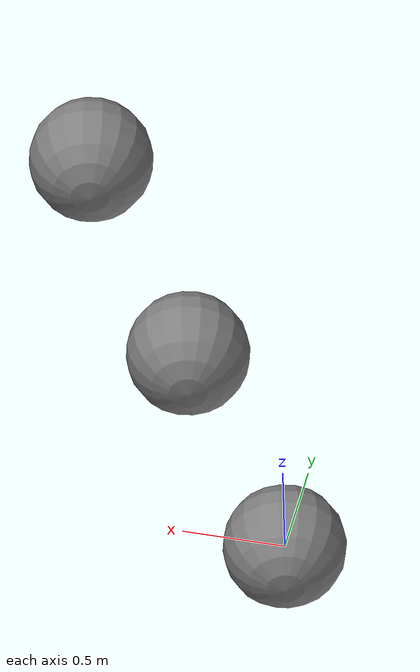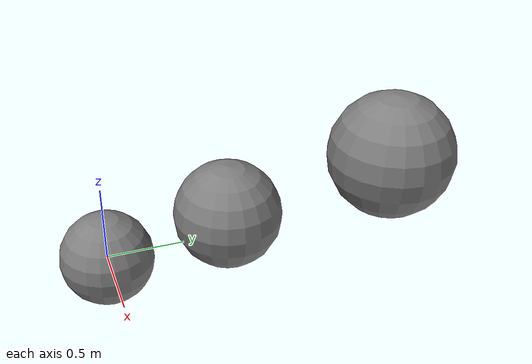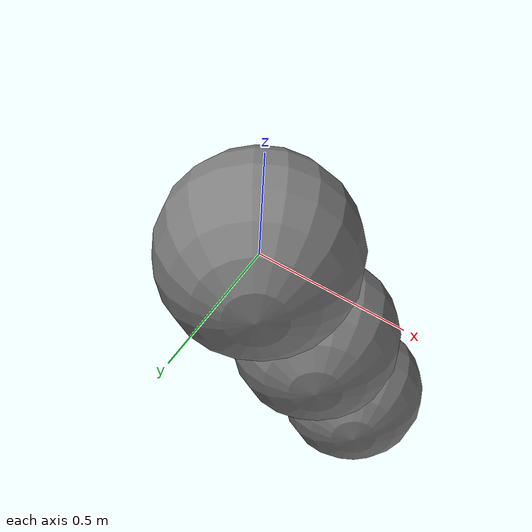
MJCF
<mujoco>
    <worldbody>
        <body name="body1">
            <joint name="jnt1" type="hinge" axis="1 -1 0"/>
            <geom name="box1" size=".3"/>
            <body name="body2">
                <joint name="jnt2" type="hinge" axis="1 -1 0"/>
                <geom name="box2" pos=".6 .6 .6" size=".3"/>
                <body name="body3">
                    <joint name="jnt3" type="hinge" axis="1 -1 0" pos=".6 .6 .6"/>
                    <geom name="box3" pos="1.2 1.2 1.2" size=".3"/>
                </body>
            </body>
        </body>
    </worldbody>
</mujoco>
